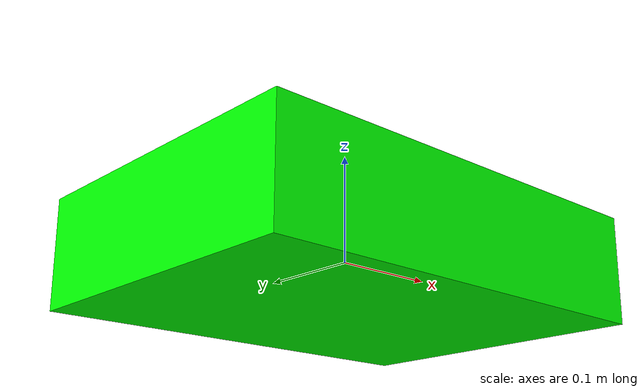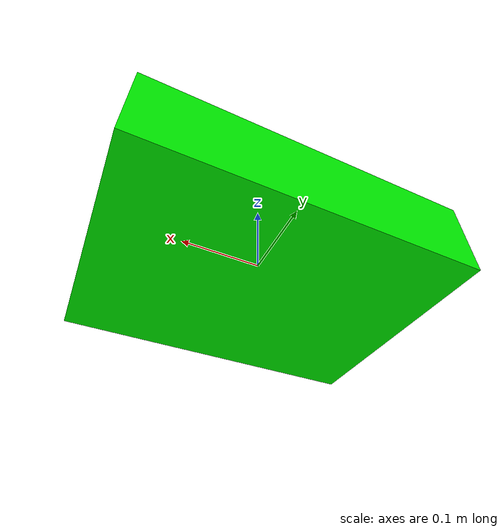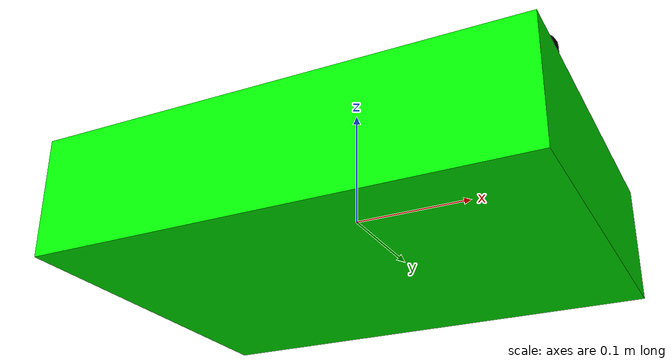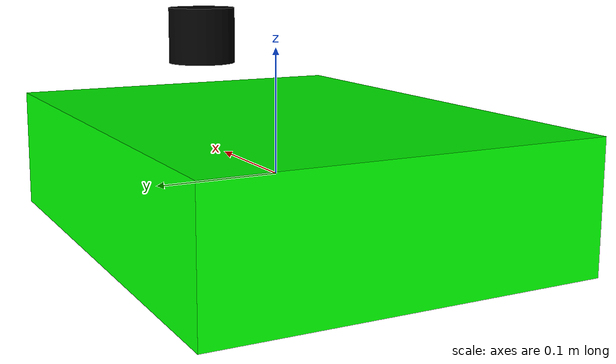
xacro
<?xml version="1.0"?>
<robot name="atlas_robot" xmlns:xacro="http://ros.org/wiki/xacro">

  <link name="base_link">
    <visual>
      <geometry>
        <box size="0.4 0.3 0.1"/> </geometry>
      <material name="green">
        <color rgba="0 1 0 1"/>
      </material>
    </visual>
  </link>

  <link name="laser_frame">
    <visual>
      <geometry>
        <cylinder radius="0.03" length="0.05"/>
      </geometry>
      <material name="black">
        <color rgba="0 0 0 1"/>
      </material>
    </visual>
  </link>

  <joint name="lidar_joint" type="fixed">
    <parent link="base_link"/>
    <child link="laser_frame"/>
    <origin xyz="0.15 0.0 0.10" rpy="0 0 0"/>
  </joint>

</robot>
